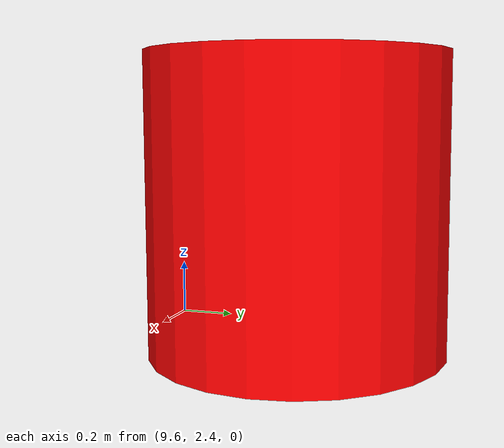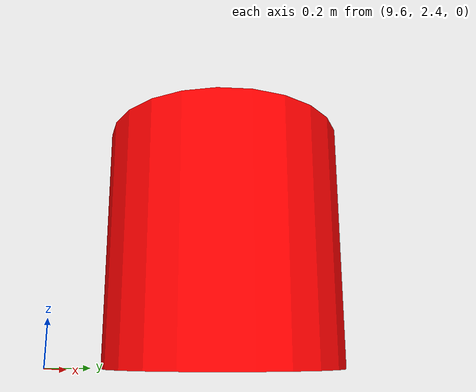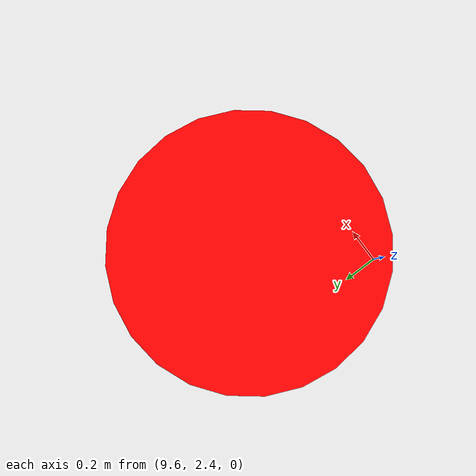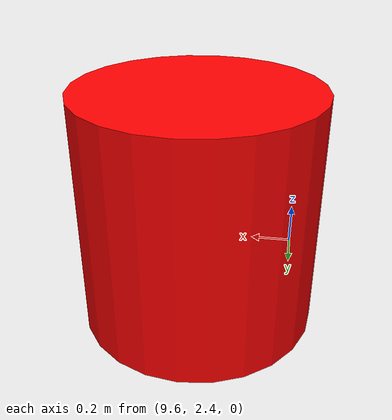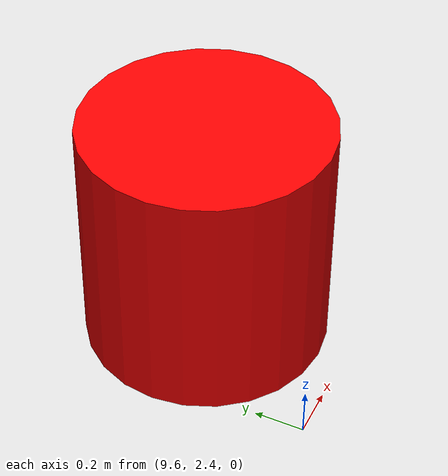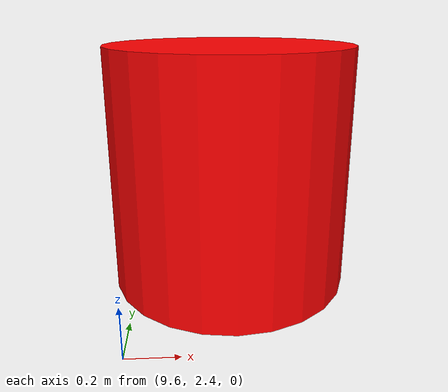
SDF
<sdf version='1.9'>
  <model name='ground_station_0'>
    <link name='ground_station_link'>
      <inertial>
        <pose>0 0 0 0 0 0</pose>
        <mass>1</mass>
        <inertia>
          <ixx>0.16666666666666671</ixx>
          <ixy>0</ixy>
          <ixz>0</ixz>
          <iyy>0.16666666666666671</iyy>
          <iyz>0</iyz>
          <izz>0.16666666666666671</izz>
        </inertia>
      </inertial>
      <collision name='ground_station_link_fixed_joint_lump__ground_station_collision_collision'>
        <pose>0 0 0 0 0 0</pose>
        <geometry>
          <cylinder>
            <length>1</length>
            <radius>0.5</radius>
          </cylinder>
        </geometry>
      </collision>
      <visual name='ground_station_link_fixed_joint_lump__ground_station_visual_visual'>
        <pose>0 0 0 0 0 0</pose>
        <geometry>
          <cylinder>
            <length>1</length>
            <radius>0.5</radius>
          </cylinder>
        </geometry>
        <material>
          <diffuse>1 0 0 1</diffuse>
          <ambient>1 0 0 1</ambient>
        </material>
      </visual>
    </link>
    <static>true</static>
    <plugin name='ignition::gazebo::systems::CommsEndpoint' filename='ignition-gazebo-comms-endpoint-system'>
      <address>ground_station_0</address>
      <topic>ground_station_0/rx</topic>
    </plugin>
    <pose>10 3 0.5 0 0 0</pose>
  </model>
</sdf>
